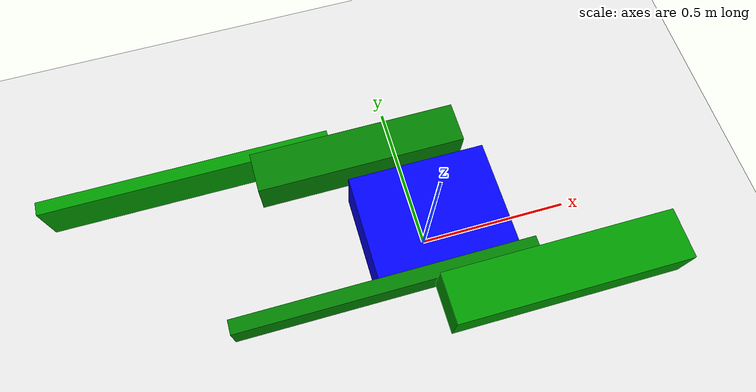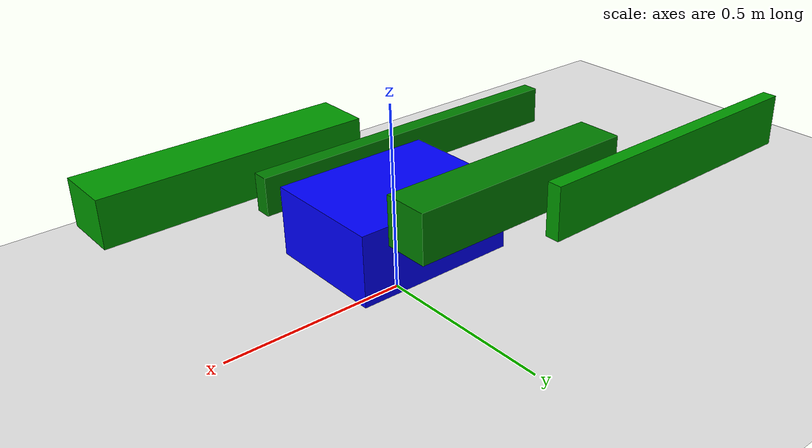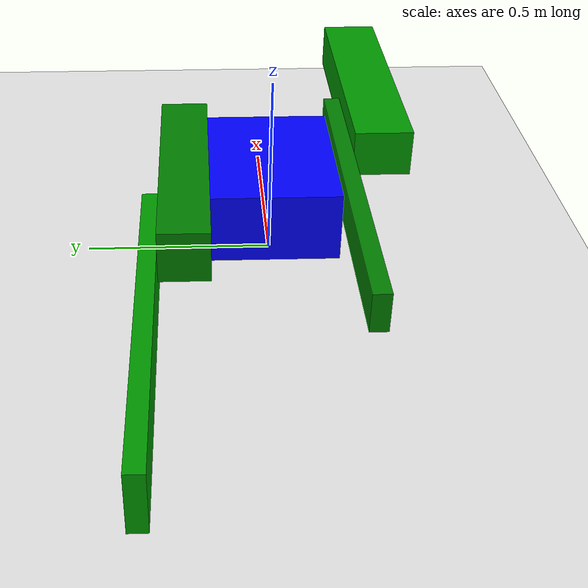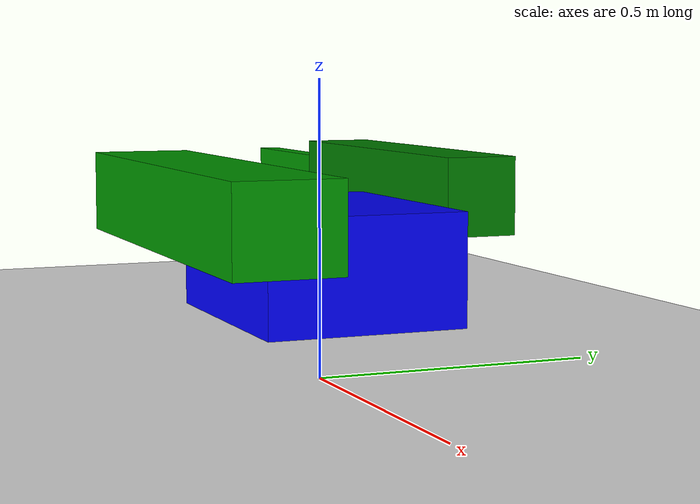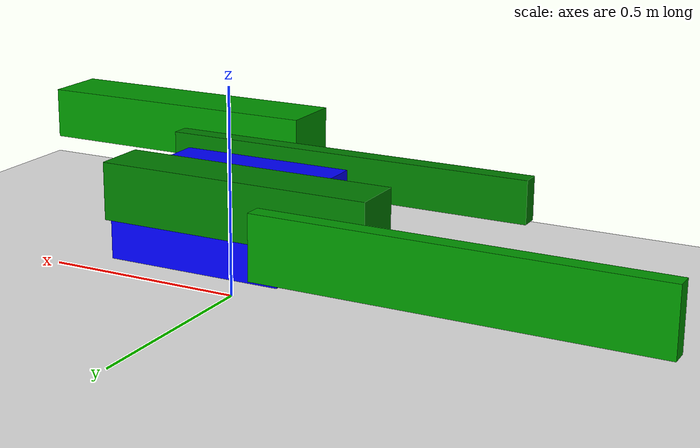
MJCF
<mujoco>
    <worldbody>
    <light diffuse=".5 .5 .5" pos="0 0 3" dir="0 0 -1"/>
    <geom type="plane" size="5 5 0.1" rgba=".9 0.9 0.9 1"/>
    <body name="main body" pos="0 0 .2">
        <joint type="free"/>
        <geom type="box" size="0.21588112033231094 0.16626753873232333 0.09282324481088047" rgba="0 0 1 1" mass="1"/>
        <site name="marker" pos="0 0 0" size="0.05"/>
        <site name="robot_center" pos="0 0 0" size="0.01"/>
        <body name="left_leg1" pos="-0.17108972055058247 0.227078256171113 0.10832919188091605">
            <joint name="left_leg1_joint" type="hinge" axis="0 1 0" pos="0 0 0"/>
            <geom type="box" size="0.31465323928157524 0.06081071743878966 0.06487925571157795" rgba="0 .5 0 1" mass="1"/>
            <body name="left_leg2" pos="-0.5151665096851772 0.08144351445840373 -0.05611832777179561">
                <joint name="left_leg2_joint" type="hinge" axis="0 1 0" pos="0 0 0"/>
                <geom type="box" size="0.4453939548801511 0.02063279701961406 0.07382381614646685" rgba="0 .6 0 1" mass="1"/>
            </body>
        </body>
        <body name="right_leg1" pos="-0.1996317894466758 -0.18823100096530643 0.07666969913720337">
            <joint name="right_leg1_joint" type="hinge" axis="0 1 0" pos="0 0 0"/>
            <geom type="box" size="0.4556000870740657 0.0219634622329831 0.05062766703851711" rgba="0 .5 0 1" mass="1"/>
            <body name="right_leg2" pos="0.49238360973044715 -0.09715211119659029 0.04514094999401115">
                <joint name="right_leg2_joint" type="hinge" axis="0 1 0" pos="0 0 0"/>
                <geom type="box" size="0.34995439797509115 0.07518864896360718 0.06126788994902979" rgba="0 .6 0 1" mass="1"/>
            </body>
        </body>
    </body>
    </worldbody>
    <sensor>
        <framepos objtype="site" objname="marker"/>
        <velocimeter name="robot_velocity" site="robot_center"/>
    </sensor>
    <actuator>
        <position joint="left_leg1_joint" kp="10"/>
        <position joint="left_leg2_joint" kp="10"/>
        <position joint="right_leg1_joint" kp="10"/>
        <position joint="right_leg2_joint" kp="10"/>
    </actuator>
</mujoco>
